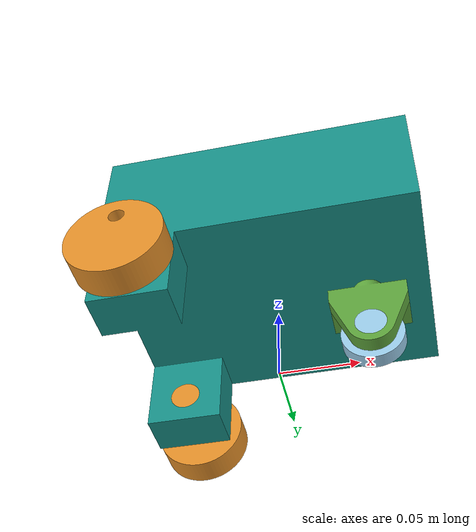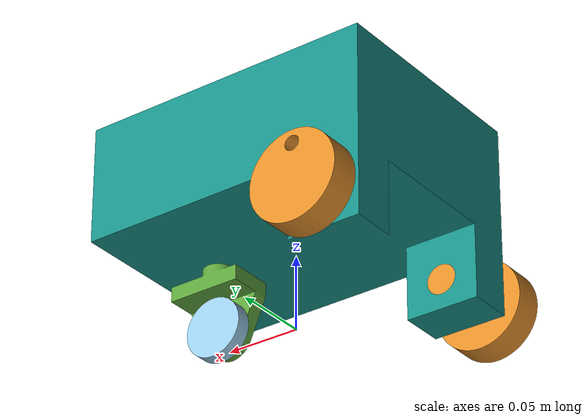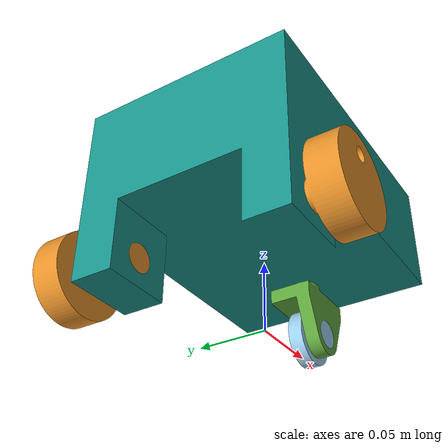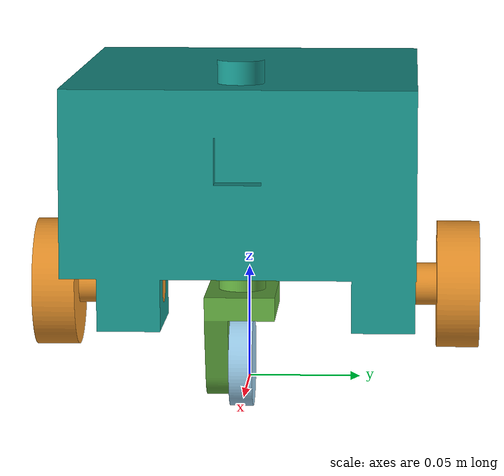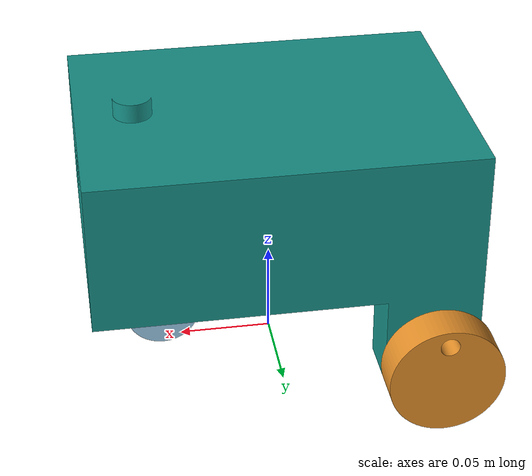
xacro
<?xml version="1.0" ?>
<!-- Generated using onshape-to-robot -->
<!-- Onshape document_id: 76c3835ad13cf92a9fda6be4 -->
<robot xmlns:xacro="http://www.ros.org/wiki/xacro">

  <!-- Link base footprint -->
  <link name="base_footprint"/>
  <!-- Joint base footprint -->
  <joint name="base_joint" type="fixed">
      <parent link="base_footprint" />
      <child link="chassis_link" />
      <origin xyz="0 0 0.06" rpy="0 0 0" />
  </joint>

  <!-- Link chassis_1 -->
  <link name="chassis_link">
    <inertial>
      <origin xyz="-0.00403018 0 0.0367476" rpy="0 0 0"/>
      <mass value="6.82331"/>
      <inertia ixx="0.018385" ixy="0" ixz="-0.00165202" iyy="0.0284116" iyz="0" izz="0.0369286"/>
    </inertial>
    <!-- Part chassis_1 -->
    <visual>
      <origin xyz="0 0 0" rpy="0 -0 0"/>
      <geometry>
        <mesh filename="package://my_robot_description/assets/chassis_1.stl"/>
      </geometry>
      <material name="chassis_1_material">
        <color rgba="0.0941176 0.580392 0.545098 1"/>
      </material>
    </visual>
    <collision>
      <origin xyz="0 0 0" rpy="0 -0 0"/>
      <geometry>
        <mesh filename="package://my_robot_description/assets/chassis_1.stl"/>
      </geometry>
    </collision>
  </link>
  <!-- Link rueda_izquierda -->
  <link name="rueda_izquierda_link">
    <inertial>
      <origin xyz="-0 -0.000492463 -0.0444186" rpy="0 0 0"/>
      <mass value="0.181356"/>
      <inertia ixx="6.71807e-05" ixy="0" ixz="0" iyy="6.91159e-05" iyz="-4.98481e-07" izz="6.8024e-05"/>
    </inertial>
    <!-- Part rueda_izquierda -->
    <visual>
      <origin xyz="0 0 -0.06" rpy="-1.5708 -0 0"/>
      <geometry>
        <mesh filename="package://my_robot_description/assets/rueda_izquierda.stl"/>
      </geometry>
      <material name="rueda_izquierda_material">
        <color rgba="0.909804 0.572549 0.164706 1"/>
      </material>
    </visual>
    <collision>
      <origin xyz="0 0 -0.06" rpy="-1.5708 -0 0"/>
      <geometry>
        <mesh filename="package://my_robot_description/assets/rueda_izquierda.stl"/>
      </geometry>
    </collision>
  </link>
  <!-- Joint from chassis_1 to rueda_izquierda -->
  <joint name="rueda_izquierda_joint" type="continuous">
    <origin xyz="-0.075 0.045 -0.03" rpy="1.5708 -0 0"/>
    <parent link="chassis_link"/>
    <child link="rueda_izquierda_link"/>
    <axis xyz="0 0 -1"/>
    <limit effort="100" velocity="100"/>
  </joint>
  <!-- Link rueda_derecha -->
  <link name="rueda_derecha_link">
    <inertial>
      <origin xyz="0 0.000384212 -0.0444186" rpy="0 0 0"/>
      <mass value="0.182369"/>
      <inertia ixx="6.83175e-05" ixy="0" ixz="0" iyy="6.95021e-05" iyz="3.9108e-07" izz="6.91655e-05"/>
    </inertial>
    <!-- Part rueda_derecha -->
    <visual>
      <origin xyz="0 0 -0.04" rpy="1.5708 -0 0"/>
      <geometry>
        <mesh filename="package://my_robot_description/assets/rueda_derecha.stl"/>
      </geometry>
      <material name="rueda_derecha_material">
        <color rgba="0.909804 0.572549 0.164706 1"/>
      </material>
    </visual>
    <collision>
      <origin xyz="0 0 -0.04" rpy="1.5708 -0 0"/>
      <geometry>
        <mesh filename="package://my_robot_description/assets/rueda_derecha.stl"/>
      </geometry>
    </collision>
  </link>
  <!-- Joint from chassis_1 to rueda_derecha -->
  <joint name="rueda_derecha_joint" type="continuous">
    <origin xyz="-0.075 -0.045 -0.03" rpy="-1.5708 -0 0"/>
    <parent link="chassis_link"/>
    <child link="rueda_derecha_link"/>
    <axis xyz="0 0 1"/>
    <limit effort="100" velocity="100"/>
  </joint>
  <!-- Link marco_rueda_loca -->
  <link name="marco_rueda_loca_link">
    <inertial>
      <origin xyz="0 -0.0030182 -0.0273013" rpy="0 0 0"/>
      <mass value="0.0823063"/>
      <inertia ixx="2.01374e-05" ixy="0" ixz="0" iyy="2.74528e-05" iyz="-3.86711e-06" izz="1.81214e-05"/>
    </inertial>
    <!-- Part marco_rueda_loca -->
    <visual>
      <origin xyz="0 -0 -0.03" rpy="0 -0 0"/>
      <geometry>
        <mesh filename="package://my_robot_description/assets/marco_rueda_loca.stl"/>
      </geometry>
      <material name="marco_rueda_loca_material">
        <color rgba="0.372549 0.654902 0.239216 1"/>
      </material>
    </visual>
    <collision>
      <origin xyz="0 -0 -0.03" rpy="0 -0 0"/>
      <geometry>
        <mesh filename="package://my_robot_description/assets/marco_rueda_loca.stl"/>
      </geometry>
    </collision>
  </link>
  <!-- Link rueda_loca -->
  <link name="rueda_loca_link">
    <inertial>
      <origin xyz="-0 0 -0.013" rpy="0 0 0"/>
      <mass value="0.0424115"/>
      <inertia ixx="4.63699e-06" ixy="0" ixz="0" iyy="4.63699e-06" iyz="0" izz="7.20995e-06"/>
    </inertial>
    <!-- Part rueda_loca -->
    <visual>
      <origin xyz="0 0 -0.02" rpy="-1.5708 -0 0"/>
      <geometry>
        <mesh filename="package://my_robot_description/assets/rueda_loca.stl"/>
      </geometry>
      <material name="rueda_loca_material">
        <color rgba="0.615686 0.811765 0.929412 1"/>
      </material>
    </visual>
    <collision>
      <origin xyz="0 0 -0.02" rpy="-1.5708 -0 0"/>
      <geometry>
        <mesh filename="package://my_robot_description/assets/rueda_loca.stl"/>
      </geometry>
    </collision>
  </link>
  <!-- Joint from marco_rueda_loca to rueda_loca -->
  <joint name="rueda_loca_joint" type="continuous">
    <origin xyz="0 -0.015 -0.0512476" rpy="1.5708 -0 -0"/>
    <parent link="marco_rueda_loca_link"/>
    <child link="rueda_loca_link"/>
    <axis xyz="0 0 -1"/>
    <limit effort="100" velocity="100"/>
  </joint>
  <!-- Joint from chassis_1 to marco_rueda_loca -->
  <joint name="marco_rueda_joint" type="fixed">
    <origin xyz="0.06 0 0.01" rpy="0 -0 0"/>
    <parent link="chassis_link"/>
    <child link="marco_rueda_loca_link"/>
    <axis xyz="0 0 1"/>
    <limit effort="100" velocity="100"/>
  </joint>

</robot>
